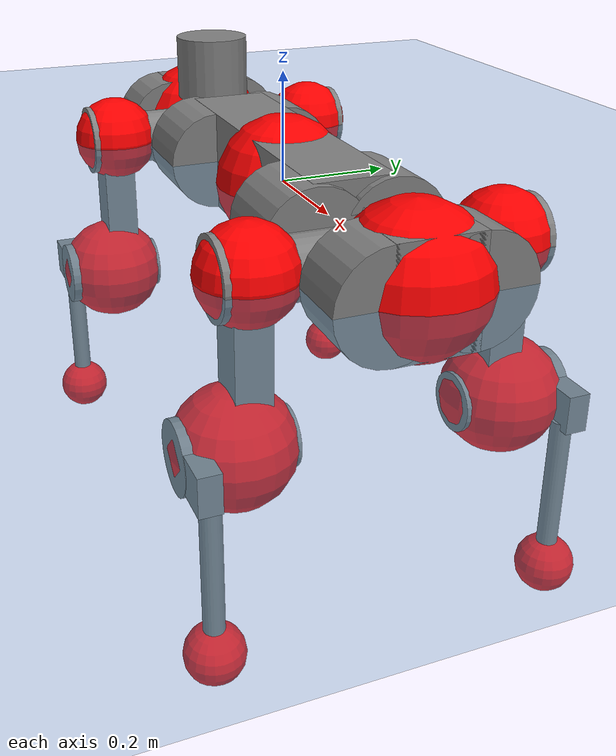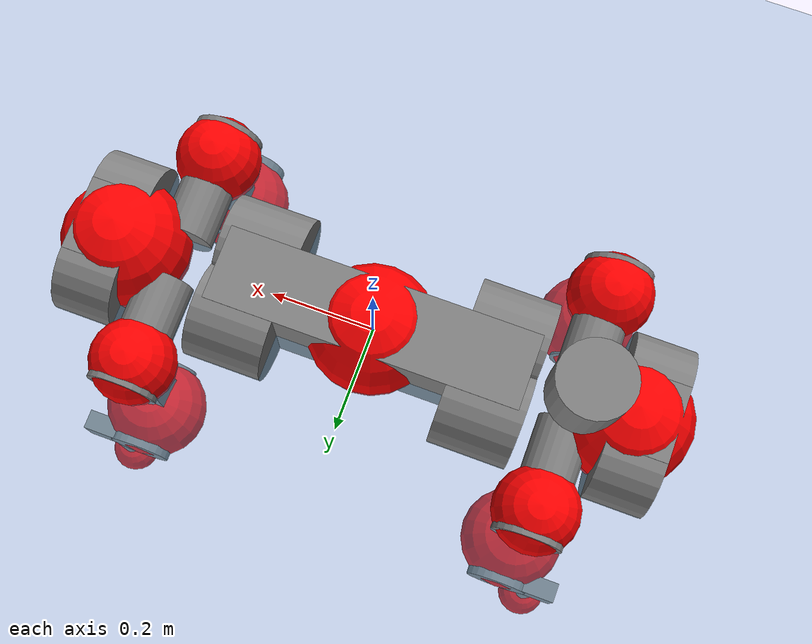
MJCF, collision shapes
<mujoco model="anymal_c">
  <compiler angle="radian" assetdir="assets" balanceinertia="true" inertiafromgeom="false"/>

  <option timestep="0.005" density="1.2" viscosity="2e-05"/>

  <size nkey="1"/>

  <visual>
    <quality shadowsize="8192"/>
    <map shadowclip="0.5"/>
  </visual>

  <default>
    <default class="/">
      <material specular="0" shininess="0.25"/>
      <geom contype="0" conaffinity="0" group="1" solref="-1000 -80"/>
      <site size="0.01 0.005 0.005" group="5"/>
      <general forcelimited="true" forcerange="-80 80" biastype="affine" gainprm="80" biasprm="0 -80 -2"/>
      <default class="anymal_c">
        <joint armature="0.01" damping="0.01" frictionloss="0.1"/>
        <default class="visual">
          <geom type="mesh" group="2"/>
          <default class="visual_zflip"/>
        </default>
        <default class="collision">
          <geom type="cylinder" group="3"/>
          <default class="foot">
            <geom size="0.03 0 0" type="sphere" condim="6" priority="1" friction="0.8 0.02 0.01" solimp="0.015 1 0.03"/>
          </default>
        </default>
      </default>
      <default class="reward_collision_sphere">
        <geom group="5" rgba="1 0 0 1"/>
      </default>
    </default>
  </default>

  <asset>
    <texture type="skybox" colorspace="auto" name="//unnamed_texture_0" builtin="gradient" rgb1="0.95 0.95 0.95" rgb2="0.95 0.95 0.95" width="100" height="600"/>
    <texture type="2d" colorspace="auto" name="texplane" builtin="checker" rgb1="0.345 0.575 0.748" rgb2="0.345 0.575 0.748" markrgb="1 1 1" width="512" height="512"/>
    <texture type="2d" colorspace="linear" name="base" file="base.png"/>
    <texture type="2d" colorspace="linear" name="top_shell" file="top_shell.png"/>
    <texture type="2d" colorspace="linear" name="bottom_shell" file="bottom_shell.png"/>
    <texture type="2d" colorspace="linear" name="remote" file="remote.png"/>
    <texture type="2d" colorspace="linear" name="hatch" file="hatch.png"/>
    <texture type="2d" colorspace="linear" name="handle" file="handle.png"/>
    <texture type="2d" colorspace="linear" name="face" file="face.png"/>
    <texture type="2d" colorspace="linear" name="battery" file="battery.png"/>
    <texture type="2d" colorspace="linear" name="lidar_cage" file="lidar_cage.png"/>
    <texture type="2d" colorspace="linear" name="depth_camera" file="depth_camera.png"/>
    <texture type="2d" colorspace="linear" name="wide_angle_camera" file="wide_angle_camera.png"/>
    <texture type="2d" colorspace="linear" name="lidar" file="lidar.png"/>
    <texture type="2d" colorspace="linear" name="drive" file="drive.png"/>
    <texture type="2d" colorspace="linear" name="hip_l" file="hip_l.png"/>
    <texture type="2d" colorspace="linear" name="shank_l" file="shank_l.png"/>
    <texture type="2d" colorspace="linear" name="foot" file="foot.png"/>
    <texture type="2d" colorspace="linear" name="thigh" file="thigh.png"/>
    <texture type="2d" colorspace="linear" name="shank_r" file="shank_r.png"/>
    <texture type="2d" colorspace="linear" name="hip_r" file="hip_r.png"/>
    <material name="MatPlane" class="/" texture="texplane" texuniform="true" texrepeat="2 2" specular="0.9" shininess="0.5"/>
    <material name="black_plastic" class="/" rgba="0.007 0.007 0.007 1"/>
    <material name="green" class="/" rgba="0.052 0.178 0.033 1"/>
    <material name="red" class="/" rgba="0.178 0.006 0.005 1"/>
    <material name="yellow" class="/" rgba="0.178 0.119 0.006 1"/>
    <material name="lwl" class="/" rgba="0.8 0.8 0.8 1"/>
    <material name="base" class="/" texture="base"/>
    <material name="top_shell" class="/" texture="top_shell"/>
    <material name="bottom_shell" class="/" texture="bottom_shell"/>
    <material name="hip_l" class="/" texture="hip_l"/>
    <material name="thigh" class="/" texture="thigh"/>
    <material name="shank_l" class="/" texture="shank_l"/>
    <material name="foot" class="/" texture="foot"/>
    <material name="hip_r" class="/" texture="hip_r"/>
    <material name="shank" class="/" texture="shank_r"/>
    <material name="hatch" class="/" texture="hatch"/>
    <material name="remote" class="/" texture="remote"/>
    <material name="handle" class="/" texture="handle"/>
    <material name="face" class="/" texture="face"/>
    <material name="depth_camera" class="/" texture="depth_camera"/>
    <material name="wide_angle_camera" class="/" texture="wide_angle_camera"/>
    <material name="battery" class="/" texture="battery"/>
    <material name="lidar_cage" class="/" texture="lidar_cage"/>
    <material name="lidar" class="/" texture="lidar"/>
    <material name="drive" class="/" texture="drive"/>
    <mesh name="base_0" class="/" file="base_0.obj"/>
    <mesh name="base_1" class="/" file="base_1.obj"/>
    <mesh name="base_2" class="/" file="base_2.obj"/>
    <mesh name="base_3" class="/" file="base_3.obj"/>
    <mesh name="base_4" class="/" file="base_4.obj"/>
    <mesh name="base_5" class="/" file="base_5.obj"/>
    <mesh name="top_shell" class="/" file="top_shell.obj"/>
    <mesh name="bottom_shell" class="/" file="bottom_shell.obj"/>
    <mesh name="remote" class="/" file="remote.obj"/>
    <mesh name="handle" class="/" file="handle.obj"/>
    <mesh name="face" class="/" file="face.obj"/>
    <mesh name="wide_angle_camera" class="/" file="wide_angle_camera.obj"/>
    <mesh name="depth_camera" class="/" file="depth_camera.obj"/>
    <mesh name="battery" class="/" file="battery.obj"/>
    <mesh name="lidar_cage" class="/" file="lidar_cage.obj"/>
    <mesh name="lidar" class="/" file="lidar.obj"/>
    <mesh name="drive" class="/" file="drive.obj"/>
    <mesh name="hip_l" class="/" file="hip_l.obj"/>
    <mesh name="thigh" class="/" file="thigh.obj"/>
    <mesh name="shank_l" class="/" file="shank_l.obj"/>
    <mesh name="foot" class="/" file="foot.obj"/>
    <mesh name="hip_r" class="/" file="hip_r.obj"/>
    <mesh name="hatch" class="/" file="hatch.obj"/>
    <mesh name="shank_r" class="/" file="shank_r.obj"/>
  </asset>

  <worldbody>
    <geom name="floor" class="/" size="100 100 0.125" type="plane" group="0" material="MatPlane"/>
    <light name="toplight_shadow" class="/" pos="0 0 5" dir="0.0990148 0.0990148 -0.990148" type="directional" ambient="0.04 0.04 0.04" diffuse="0.55 0.55 0.55" specular="0.12 0.12 0.12"/>
    <light name="toplight_fill" class="/" pos="0 0 5" dir="0.0990148 0.0990148 -0.990148" type="directional" castshadow="false" ambient="0.04 0.04 0.04" diffuse="0.3 0.3 0.3" specular="0.08 0.08 0.08"/>
    <body name="trunk" childclass="anymal_c" pos="0.00106516 9.21889e-05 -0.000761665" quat="1 1.31136e-05 2.632e-06 -6.38532e-05">
      <inertial pos="-5.53666e-06 -0.00254031 0.0488307" quat="0.496311 0.499899 0.503342 0.500423" mass="21.7895" diaginertia="1.0279 0.600724 0.219169"/>
      <joint name="//unnamed_joint_0" type="free" armature="0" damping="0" frictionloss="0"/>
      <geom name="//unnamed_geom_1" class="visual" material="green" mesh="base_0"/>
      <geom name="//unnamed_geom_2" class="visual" material="yellow" mesh="base_1"/>
      <geom name="//unnamed_geom_3" class="visual" material="red" mesh="base_2"/>
      <geom name="//unnamed_geom_4" class="visual" material="black_plastic" mesh="base_3"/>
      <geom name="//unnamed_geom_5" class="visual" material="lwl" mesh="base_4"/>
      <geom name="//unnamed_geom_6" class="visual" material="base" mesh="base_5"/>
      <geom name="trunk_1" class="collision" size="0.299114 0.0721999 0.0928284" type="box"/>
      <geom name="trunk_2" class="collision" size="0.0928284 0.0747784" pos="0.239005 0.0694567 0" quat="0.707107 0 0.707107 0"/>
      <geom name="trunk_3" class="collision" size="0.0928284 0.0747784" pos="-0.239005 0.0694567 0" quat="0.707107 0 0.707107 0"/>
      <geom name="trunk_4" class="collision" size="0.0928284 0.0747784" pos="0.239005 -0.0694567 0" quat="0.707107 0 0.707107 0"/>
      <geom name="trunk_5" class="collision" size="0.0928284 0.0747784" pos="-0.239005 -0.0694567 0" quat="0.707107 0 0.707107 0"/>
      <geom name="//unnamed_geom_12" class="visual" material="top_shell" mesh="top_shell"/>
      <geom name="//unnamed_geom_13" class="visual" material="bottom_shell" mesh="bottom_shell"/>
      <geom name="//unnamed_geom_14" class="visual" material="remote" mesh="remote"/>
      <geom name="//unnamed_geom_15" class="visual" material="handle" mesh="handle"/>
      <geom name="//unnamed_geom_16" class="visual" pos="0.455482 0 0" quat="1 0 0 0" material="face" mesh="face"/>
      <geom name="trunk_6" class="collision" size="0.0567285 0.0721999 0.0928284" pos="0.51592 0 0" type="box"/>
      <geom name="//unnamed_geom_18" class="collision" size="0.0928284 0.0567285" pos="0.51592 0.0694567 0" quat="0.707107 0 0.707107 0"/>
      <geom name="//unnamed_geom_19" class="collision" size="0.0928284 0.0567285" pos="0.51592 -0.0694567 0" quat="0.707107 0 0.707107 0"/>
      <geom name="//unnamed_geom_20" class="visual" pos="0.50729 0 -0.0285653" quat="0.965926 0 0.258819 0" material="depth_camera" mesh="depth_camera"/>
      <geom name="//unnamed_geom_21" class="visual" pos="0.563721 0 0.0150175" material="wide_angle_camera" mesh="wide_angle_camera"/>
      <geom name="//unnamed_geom_22" class="visual_zflip" pos="-0.455482 0 0" quat="0 0 0 1" material="face" mesh="face"/>
      <geom name="trunk_7" class="collision" size="0.0567285 0.0721999 0.0928284" pos="-0.51592 0 0" quat="0 0 0 1" type="box"/>
      <geom name="//unnamed_geom_24" class="collision" size="0.0928284 0.0567285" pos="-0.51592 -0.0694567 0" quat="0 -0.707107 0 0.707107"/>
      <geom name="//unnamed_geom_25" class="collision" size="0.0928284 0.0567285" pos="-0.51592 0.0694567 0" quat="0 -0.707107 0 0.707107"/>
      <geom name="//unnamed_geom_26" class="visual" pos="-0.50729 0 -0.0285653" quat="0 -0.258819 0 0.965926" material="depth_camera" mesh="depth_camera"/>
      <geom name="//unnamed_geom_27" class="visual_zflip" pos="-0.563721 0 0.0150175" quat="0 0 0 1" material="wide_angle_camera" mesh="wide_angle_camera"/>
      <geom name="//unnamed_geom_28" class="visual" material="battery" mesh="battery"/>
      <geom name="//unnamed_geom_29" class="visual" pos="0 0.0744633 0.0298694" quat="0.683013 -0.183013 0.183013 0.683013" material="depth_camera" mesh="depth_camera"/>
      <geom name="//unnamed_geom_30" class="visual" pos="0 -0.0744633 0.0298694" quat="0.683013 0.183013 0.183013 -0.683013" material="depth_camera" mesh="depth_camera"/>
      <geom name="//unnamed_geom_31" class="visual" pos="-0.399989 0 0.073733" quat="1 0 0 0" material="lidar_cage" mesh="lidar_cage"/>
      <geom name="trunk_8" class="collision" size="0.0721999 0.0618856" pos="-0.399989 0 0.133923"/>
      <geom name="//unnamed_geom_33" class="visual" pos="-0.399989 -4.18936e-05 0.142651" quat="0.707107 0 0 -0.707107" material="lidar" mesh="lidar"/>
      <geom name="//unnamed_geom_34" class="visual" pos="0.329552 0.103197 -1.88589e-10" quat="0.258819 0.965926 0 0" material="drive" mesh="drive"/>
      <geom name="//unnamed_geom_35" class="visual" pos="0.329552 -0.103197 1.88589e-10" quat="0.258819 -0.965926 0 0" material="drive" mesh="drive"/>
      <geom name="//unnamed_geom_36" class="visual" pos="-0.329552 0.103197 1.88589e-10" quat="0 0 0.965926 -0.258819" material="drive" mesh="drive"/>
      <geom name="//unnamed_geom_37" class="visual" pos="-0.329552 -0.103197 -1.88589e-10" quat="0 0 -0.965926 -0.258819" material="drive" mesh="drive"/>
      <geom name="//unnamed_geom_38" class="visual" pos="0.127469 0 0.0732315" quat="1 0 0 0" material="hatch" mesh="hatch"/>
      <geom name="//unnamed_geom_39" class="reward_collision_sphere" size="0.123771"/>
      <geom name="//unnamed_geom_40" class="reward_collision_sphere" size="0.123771" pos="0.494492 0 0"/>
      <geom name="//unnamed_geom_41" class="reward_collision_sphere" size="0.123771" pos="-0.494492 0 0"/>
      <site name="imu" pos="0.286563 0.00860816 0.0332916" size="0.0103143"/>
      <camera name="track" pos="0 -1.98448 0" quat="0.707107 0.707107 0 0" mode="trackcom"/>
      <camera name="ego_camera" pos="0.494492 0 -0.0401268" quat="-0.5 -0.5 0.5 0.5"/>
      <body name="LF_HIP" pos="0.328159 0.101624 -0.000721548" quat="0.25861 0.965982 6.61862e-05 -5.641e-06">
        <inertial pos="0.0624729 -0.0167204 -0.00847146" quat="-0.128157 0.709404 -0.135271 0.679723" mass="2.9633" diaginertia="0.00906827 0.00444952 0.00324242"/>
        <joint name="LF_HAA" pos="0 0 0" axis="0.999991 -0.0041939 0.000635015" range="-0.716411 0.482215" armature="0.0106064" damping="0.014924" frictionloss="0.0959298"/>
        <geom name="//unnamed_geom_42" class="visual" pos="0 -1.10938e-05 1.82215e-06" quat="0.258819 -0.965926 0 0" material="hip_l" mesh="hip_l"/>
        <geom name="//unnamed_geom_43" class="visual" pos="0.0658224 -0.0783578 -0.0453207" quat="0.183013 -0.683013 0.683013 0.183013" material="drive" mesh="drive"/>
        <geom name="//unnamed_geom_44" class="collision" size="0.0515713 0.0721999" pos="0.0658224 -0.011867 -0.00692689" quat="-0.353553 -0.612372 0.612372 -0.353553"/>
        <body name="LF_THIGH" pos="0.0656188 -0.069654 -0.0416384" quat="0.182064 -0.683474 0.682637 0.183638">
          <inertial pos="0.0346109 -2.45659e-05 -0.245866" quat="0.993382 -0.0099698 -0.0727328 0.0883365" mass="3.29034" diaginertia="0.0482317 0.0276984 0.00418558"/>
          <joint name="LF_HFE" pos="0 0 0" axis="0.999996 0.00138477 0.00263813" stiffness="0.00233532" range="-3.0955 3.16419" armature="0.0108946" damping="0.0183793" frictionloss="0.0995692"/>
          <geom name="//unnamed_geom_45" class="visual" pos="0.00212159 3.34313e-06 0" quat="0.707107 0 0 -0.707107" material="thigh" mesh="thigh"/>
          <geom name="//unnamed_geom_46" class="collision" size="0.0670427 0.0412571" pos="0.0439549 0 0" quat="0.5 0.5 -0.5 -0.5"/>
          <geom name="//unnamed_geom_47" class="collision" size="0.0386785 0.0309428 0.145755" pos="0.0329662 0 -0.141762" quat="0.707107 0 0 -0.707107" type="box"/>
          <geom name="//unnamed_geom_48" class="visual" pos="0.110217 0 -0.285904" quat="1 0 0 0" material="drive" mesh="drive"/>
          <geom name="//unnamed_geom_49" class="collision" size="0.0515713 0.0721999" pos="0.0332958 0 -0.285904" quat="0.707107 0 0.707107 0"/>
          <geom name="//unnamed_geom_50" class="reward_collision_sphere" size="0.0825141" pos="0.0274718 0 0"/>
          <body name="LF_SHANK" pos="0.110292 0.00222749 -0.286426" quat="1 -0.000130729 -0.000441761 7.71097e-05">
            <inertial pos="0.00634112 -0.0617885 -0.0810045" quat="0.992912 -0.116111 -0.000595672 -0.0253749" mass="0.649194" diaginertia="0.0159721 0.00898684 0.00113419"/>
            <joint name="LF_KFE" pos="0 0 0" axis="0.999998 0.000790621 0.00200541" range="-3.11496 3.13479" armature="0.00991799" damping="0.0106726" frictionloss="0.102832"/>
            <geom name="//unnamed_geom_51" class="visual" pos="0.000691805 0.00368874 0" quat="0.707107 0 0 -0.707107" material="shank_l" mesh="shank_l"/>
            <geom name="LF_kfe_act" class="collision" size="0.0618856 0.0206285" pos="0.0219774 0 0" quat="0.5 0.5 -0.5 -0.5"/>
            <geom name="//unnamed_geom_53" class="collision" size="0.059306 0.0348107 0.0195971" pos="0.0219774 -0.0570527 0" quat="0.5 0.5 -0.5 -0.5" type="box"/>
            <geom name="//unnamed_geom_54" class="visual" pos="0.0143401 -0.0860786 -0.339042" quat="0.382683 0 0 -0.92388" material="foot" mesh="foot"/>
            <geom name="LF_calf" class="collision" size="0.01805 0.145691" pos="0.0143403 -0.0872673 -0.169521" quat="0.707107 0 0 -0.707107"/>
            <geom name="LF_foot" class="foot" size="0.0303917" pos="0.0143403 -0.0872673 -0.31647" quat="0.707107 0 0 -0.707107"/>
            <geom name="//unnamed_geom_57" class="reward_collision_sphere" size="0.103143" pos="-0.0549436 0 0"/>
            <geom name="//unnamed_geom_58" class="reward_collision_sphere" size="0.0515713" pos="0.0143403 -0.0872673 -0.31647"/>
            <site name="LF_foot" class="foot" pos="0.0143403 -0.0872673 -0.31647" quat="0.707107 0 0 -0.707107" size="0.0103143"/>
          </body>
        </body>
      </body>
      <body name="RF_HIP" pos="0.327415 -0.103267 0.00151371" quat="0.258886 -0.965908 -0.000138615 3.60389e-05">
        <inertial pos="0.0613015 0.0129085 -0.00976963" quat="0.124633 0.676847 0.12203 0.71516" mass="3.01033" diaginertia="0.00905963 0.00484466 0.00323535"/>
        <joint name="RF_HAA" pos="0 0 0" axis="0.999964 0.00818189 0.0024238" range="-0.503991 0.719544" armature="0.0102833" damping="0.00107347" frictionloss="0.0998274"/>
        <geom name="//unnamed_geom_59" class="visual" pos="0 1.10937e-05 1.82215e-06" quat="0.258819 0.965926 0 0" material="hip_r" mesh="hip_r"/>
        <geom name="//unnamed_geom_60" class="visual" pos="0.0658224 0.0783578 -0.0453207" quat="0.183013 0.683013 0.683013 -0.183013" material="drive" mesh="drive"/>
        <geom name="//unnamed_geom_61" class="collision" size="0.0515713 0.0721999" pos="0.0658224 0.011867 -0.00692689" quat="-0.353553 0.612372 0.612372 0.353553"/>
        <body name="RF_THIGH" pos="0.0666585 0.0720157 -0.0444477" quat="0.183462 0.683544 0.682476 -0.18258">
          <inertial pos="0.036585 0.000909541 -0.246755" quat="0.992729 -0.00939587 -0.0801427 0.0893235" mass="3.49431" diaginertia="0.0482941 0.028231 0.00443933"/>
          <joint name="RF_HFE" pos="0 0 0" axis="0.999998 -0.00183724 0.000412039" range="-3.15794 3.15481" armature="0.00971558" damping="0.0120113" frictionloss="0.101479"/>
          <geom name="//unnamed_geom_62" class="visual" pos="0.00212159 3.34313e-06 0" quat="0.707107 0 0 -0.707107" material="thigh" mesh="thigh"/>
          <geom name="//unnamed_geom_63" class="collision" size="0.0670427 0.0412571" pos="0.0439549 0 0" quat="0.5 0.5 0.5 0.5"/>
          <geom name="//unnamed_geom_64" class="collision" size="0.0386785 0.0309428 0.145755" pos="0.0329662 0 -0.141762" quat="0.707107 0 0 0.707107" type="box"/>
          <geom name="//unnamed_geom_65" class="visual" pos="0.110217 0 -0.285904" quat="1 0 0 0" material="drive" mesh="drive"/>
          <geom name="//unnamed_geom_66" class="collision" size="0.0515713 0.0721999" pos="0.0332958 0 -0.285904" quat="0.707107 0 0.707107 0"/>
          <geom name="//unnamed_geom_67" class="reward_collision_sphere" size="0.0825141" pos="0.0274718 0 0"/>
          <body name="RF_SHANK" pos="0.109049 -0.000644426 -0.284805" quat="1 -0.000244066 -0.000189464 0.000176626">
            <inertial pos="0.00431261 0.0608458 -0.0806737" quat="0.992973 0.114267 -0.0142091 0.027308" mass="0.6692" diaginertia="0.0166268 0.00912165 0.00116217"/>
            <joint name="RF_KFE" pos="0 0 0" axis="1 -0.000952309 -0.000122423" range="-3.18836 3.11709" armature="0.0115309" damping="0.0222989" frictionloss="0.102616"/>
            <geom name="//unnamed_geom_68" class="visual" pos="0.000691801 -0.00368873 0" quat="0.707107 0 0 0.707107" material="shank" mesh="shank_r"/>
            <geom name="RF_kfe_act" class="collision" size="0.0618856 0.0206285" pos="0.0219774 0 0" quat="0.5 0.5 0.5 0.5"/>
            <geom name="//unnamed_geom_70" class="collision" size="0.059306 0.0348107 0.0195971" pos="0.0219774 0.0570527 0" quat="0.5 0.5 0.5 0.5" type="box"/>
            <geom name="//unnamed_geom_71" class="visual" pos="0.0143404 0.0860786 -0.339042" quat="0.382683 0 0 0.92388" material="foot" mesh="foot"/>
            <geom name="RF_calf" class="collision" size="0.01805 0.145691" pos="0.0143403 0.0872673 -0.169521" quat="0.707107 0 0 0.707107"/>
            <geom name="RF_foot" class="foot" size="0.0279302" pos="0.0143403 0.0872673 -0.31647" quat="0.707107 0 0 0.707107"/>
            <geom name="//unnamed_geom_74" class="reward_collision_sphere" size="0.103143" pos="-0.0549436 0 0"/>
            <geom name="//unnamed_geom_75" class="reward_collision_sphere" size="0.0515713" pos="0.0143403 0.0872673 -0.31647"/>
            <site name="RF_foot" class="foot" pos="0.0143403 0.0872673 -0.31647" quat="0.707107 0 0 0.707107" size="0.0103143"/>
          </body>
        </body>
      </body>
      <body name="LH_HIP" pos="-0.326382 0.101957 -0.00108739" quat="-0.000247506 -0.000157983 0.965939 -0.258769">
        <inertial pos="0.0625719 0.0163881 -0.0110578" quat="0.127847 0.684703 0.12399 0.706727" mass="3.15203" diaginertia="0.0100136 0.00495171 0.00343187"/>
        <joint name="LH_HAA" pos="0 0 0" axis="0.999922 0.00899737 -0.00866266" range="-0.494935 0.709653" armature="0.0104024" damping="0" frictionloss="0.103139"/>
        <geom name="//unnamed_geom_76" class="visual" pos="0 1.10937e-05 1.82215e-06" quat="-0.258819 -0.965926 0 0" material="hip_r" mesh="hip_r"/>
        <geom name="//unnamed_geom_77" class="visual" pos="0.0658224 0.0783578 -0.0453207" quat="0.183013 0.683013 0.683013 -0.183013" material="drive" mesh="drive"/>
        <geom name="//unnamed_geom_78" class="collision" size="0.0515713 0.0721999" pos="0.0658224 0.011867 -0.00692689" quat="-0.353553 0.612372 0.612372 0.353553"/>
        <body name="LH_THIGH" pos="0.0654602 0.0716831 -0.0433062" quat="0.183057 0.682925 0.683223 -0.182513">
          <inertial pos="0.031297 -0.000948296 -0.248966" quat="0.992717 -0.00551687 -0.0816961 0.088359" mass="3.31692" diaginertia="0.0458988 0.0287252 0.00413165"/>
          <joint name="LH_HFE" pos="0 0 0" axis="1 -0.000269903 -0.000525375" stiffness="0.00870659" range="-3.14966 3.11266" armature="0.00983205" damping="0" frictionloss="0.102024"/>
          <geom name="//unnamed_geom_79" class="visual" pos="0.00212159 3.34313e-06 0" quat="0.707107 0 0 -0.707107" material="thigh" mesh="thigh"/>
          <geom name="//unnamed_geom_80" class="collision" size="0.0670427 0.0412571" pos="0.0439549 0 0" quat="0.5 0.5 -0.5 -0.5"/>
          <geom name="//unnamed_geom_81" class="collision" size="0.0386785 0.0309428 0.145755" pos="0.0329662 0 -0.141762" quat="0.707107 0 0 -0.707107" type="box"/>
          <geom name="//unnamed_geom_82" class="visual" pos="0.110217 0 -0.285904" quat="1 0 0 0" material="drive" mesh="drive"/>
          <geom name="//unnamed_geom_83" class="collision" size="0.0515713 0.0721999" pos="0.0332958 0 -0.285904" quat="0.707107 0 0.707107 0"/>
          <geom name="//unnamed_geom_84" class="reward_collision_sphere" size="0.0825141" pos="0.0274718 0 0"/>
          <body name="LH_SHANK" pos="0.110483 -0.00174447 -0.284721" quat="1 -1.69427e-05 -4.64139e-06 -0.000202727">
            <inertial pos="0.00633119 0.0631704 -0.0800264" quat="0.992506 0.118763 -0.00490786 0.0283243" mass="0.665484" diaginertia="0.016513 0.00945376 0.00116013"/>
            <joint name="LH_KFE" pos="0 0 0" axis="0.999993 -0.00224279 -0.00283112" range="-3.09738 3.10942" armature="0.0116772" damping="0.0224399" frictionloss="0.091448"/>
            <geom name="//unnamed_geom_85" class="visual" pos="0.000691801 -0.00368873 0" quat="-0.707107 0 0 -0.707107" material="shank" mesh="shank_r"/>
            <geom name="LH_kfe_act" class="collision" size="0.0618856 0.0206285" pos="0.0219774 0 0" quat="0.5 0.5 -0.5 -0.5"/>
            <geom name="//unnamed_geom_87" class="collision" size="0.059306 0.0348107 0.0195971" pos="0.0219774 0.0570527 0" quat="0.5 0.5 -0.5 -0.5" type="box"/>
            <geom name="//unnamed_geom_88" class="visual" pos="0.0143404 0.0860786 -0.339042" quat="-0.382683 0 0 -0.92388" material="foot" mesh="foot"/>
            <geom name="LH_calf" class="collision" size="0.01805 0.145691" pos="0.0143403 0.0872673 -0.169521" quat="0.707107 0 0 -0.707107"/>
            <geom name="LH_foot" class="foot" size="0.0320647" pos="0.0143403 0.0872673 -0.31647" quat="0.707107 0 0 -0.707107"/>
            <geom name="//unnamed_geom_91" class="reward_collision_sphere" size="0.103143" pos="-0.0549436 0 0"/>
            <geom name="//unnamed_geom_92" class="reward_collision_sphere" size="0.0515713" pos="0.0143403 0.0872673 -0.31647"/>
            <site name="LH_foot" class="foot" pos="0.0143403 0.0872673 -0.31647" quat="0.707107 0 0 -0.707107" size="0.0103143"/>
          </body>
        </body>
      </body>
      <body name="RH_HIP" pos="-0.326842 -0.103967 0.000392459" quat="-3.875e-05 0.000171376 -0.965949 -0.258731">
        <inertial pos="0.0613584 -0.0148199 -0.0111815" quat="-0.12191 0.702332 -0.136864 0.687849" mass="3.03365" diaginertia="0.00909402 0.0045688 0.00322361"/>
        <joint name="RH_HAA" pos="0 0 0" axis="0.9999 -0.0127608 0.00607625" range="-0.774453 0.503317" armature="0.0104785" damping="0.00739518" frictionloss="0.103336"/>
        <geom name="//unnamed_geom_93" class="visual" pos="0 -1.10938e-05 1.82215e-06" quat="-0.258819 0.965926 0 0" material="hip_l" mesh="hip_l"/>
        <geom name="//unnamed_geom_94" class="visual" pos="0.0658224 -0.0783578 -0.0453207" quat="-0.183013 0.683013 -0.683013 -0.183013" material="drive" mesh="drive"/>
        <geom name="//unnamed_geom_95" class="collision" size="0.0515713 0.0721999" pos="0.0658224 -0.011867 -0.00692689" quat="0.353553 0.612372 -0.612372 0.353553"/>
        <body name="RH_THIGH" pos="0.0683548 -0.0721794 -0.0441764" quat="-0.183878 0.683342 -0.68248 -0.182903">
          <inertial pos="0.0346031 0.000716767 -0.247344" quat="0.993166 -0.00521979 -0.0811789 0.0836898" mass="3.24238" diaginertia="0.0466222 0.0282331 0.00420648"/>
          <joint name="RH_HFE" pos="0 0 0" axis="0.999986 0.00142927 -0.00510663" stiffness="0.00327195" range="-3.12234 3.16294" armature="0.0107106" damping="0.0102731" frictionloss="0.104646"/>
          <geom name="//unnamed_geom_96" class="visual" pos="0.00212159 3.34313e-06 0" quat="0.707107 0 0 -0.707107" material="thigh" mesh="thigh"/>
          <geom name="//unnamed_geom_97" class="collision" size="0.0670427 0.0412571" pos="0.0439549 0 0" quat="0.5 0.5 0.5 0.5"/>
          <geom name="//unnamed_geom_98" class="collision" size="0.0386785 0.0309428 0.145755" pos="0.0329662 0 -0.141762" quat="0.707107 0 0 0.707107" type="box"/>
          <geom name="//unnamed_geom_99" class="visual" pos="0.110217 0 -0.285904" quat="1 0 0 0" material="drive" mesh="drive"/>
          <geom name="//unnamed_geom_100" class="collision" size="0.0515713 0.0721999" pos="0.0332958 0 -0.285904" quat="0.707107 0 0.707107 0"/>
          <geom name="//unnamed_geom_101" class="reward_collision_sphere" size="0.0825141" pos="0.0274718 0 0"/>
          <body name="RH_SHANK" pos="0.109605 0.00235052 -0.285753" quat="0.999999 0.000645535 0.000842644 0.000721637">
            <inertial pos="0.00833372 -0.0604392 -0.0819843" quat="0.99213 -0.122123 0.00647786 -0.0268646" mass="0.658697" diaginertia="0.0161986 0.00889536 0.00113652"/>
            <joint name="RH_KFE" pos="0 0 0" axis="0.999996 -0.00176688 0.0021928" range="-3.13462 3.18612" armature="0.0103453" damping="0.0224579" frictionloss="0.102361"/>
            <geom name="//unnamed_geom_102" class="visual" pos="0.000691805 0.00368874 0" quat="0.707107 0 0 -0.707107" material="shank_l" mesh="shank_l"/>
            <geom name="RH_kfe_act" class="collision" size="0.0618856 0.0206285" pos="0.0219774 0 0" quat="0.5 0.5 0.5 0.5"/>
            <geom name="//unnamed_geom_104" class="collision" size="0.059306 0.0348107 0.0195971" pos="0.0219774 -0.0570527 0" quat="0.5 0.5 0.5 0.5" type="box"/>
            <geom name="//unnamed_geom_105" class="visual" pos="0.0143401 -0.0860786 -0.339042" quat="0.382683 0 0 -0.92388" material="foot" mesh="foot"/>
            <geom name="RH_calf" class="collision" size="0.01805 0.145691" pos="0.0143403 -0.0872673 -0.169521" quat="0.707107 0 0 0.707107"/>
            <geom name="RH_foot" class="foot" size="0.0279635" pos="0.0143403 -0.0872673 -0.31647" quat="0.707107 0 0 0.707107"/>
            <geom name="//unnamed_geom_108" class="reward_collision_sphere" size="0.103143" pos="-0.0549436 0 0"/>
            <geom name="//unnamed_geom_109" class="reward_collision_sphere" size="0.0515713" pos="0.0143403 -0.0872673 -0.31647"/>
            <site name="RH_foot" class="foot" pos="0.0143403 -0.0872673 -0.31647" quat="0.707107 0 0 0.707107" size="0.0103143"/>
          </body>
        </body>
      </body>
    </body>
  </worldbody>

  <contact>
    <pair class="/" geom1="floor" geom2="LF_foot" name="//unnamed_contact_0"/>
    <pair class="/" geom1="floor" geom2="RF_foot" name="//unnamed_contact_1"/>
    <pair class="/" geom1="floor" geom2="LH_foot" name="//unnamed_contact_2"/>
    <pair class="/" geom1="floor" geom2="RH_foot" name="//unnamed_contact_3"/>
  </contact>

  <actuator>
    <general name="LF_HAA" class="/" joint="LF_HAA" forcerange="-77.4344 77.4344" gainprm="81.6121" biasprm="0 -81.6121 -2.03947"/>
    <general name="LF_HFE" class="/" joint="LF_HFE" forcerange="-74.2678 74.2678" gainprm="81.6121" biasprm="0 -81.6121 -2.03947"/>
    <general name="LF_KFE" class="/" joint="LF_KFE" forcerange="-85.6469 85.6469" gainprm="81.6121" biasprm="0 -81.6121 -2.03947"/>
    <general name="RF_HAA" class="/" joint="RF_HAA" forcerange="-85.1072 85.1072" gainprm="81.6121" biasprm="0 -81.6121 -2.03947"/>
    <general name="RF_HFE" class="/" joint="RF_HFE" forcerange="-89.8744 89.8744" gainprm="81.6121" biasprm="0 -81.6121 -2.03947"/>
    <general name="RF_KFE" class="/" joint="RF_KFE" forcerange="-85.4044 85.4044" gainprm="81.6121" biasprm="0 -81.6121 -2.03947"/>
    <general name="LH_HAA" class="/" joint="LH_HAA" forcerange="-82.7169 82.7169" gainprm="81.6121" biasprm="0 -81.6121 -2.03947"/>
    <general name="LH_HFE" class="/" joint="LH_HFE" forcerange="-77.8487 77.8487" gainprm="81.6121" biasprm="0 -81.6121 -2.03947"/>
    <general name="LH_KFE" class="/" joint="LH_KFE" forcerange="-82.1764 82.1764" gainprm="81.6121" biasprm="0 -81.6121 -2.03947"/>
    <general name="RH_HAA" class="/" joint="RH_HAA" forcerange="-82.4759 82.4759" gainprm="81.6121" biasprm="0 -81.6121 -2.03947"/>
    <general name="RH_HFE" class="/" joint="RH_HFE" forcerange="-90.6172 90.6172" gainprm="81.6121" biasprm="0 -81.6121 -2.03947"/>
    <general name="RH_KFE" class="/" joint="RH_KFE" forcerange="-79.4012 79.4012" gainprm="81.6121" biasprm="0 -81.6121 -2.03947"/>
  </actuator>

  <sensor>
    <gyro site="imu" name="imu_angular_velocity"/>
    <velocimeter site="imu" name="imu_linear_velocity"/>
    <framelinvel objtype="site" objname="LF_foot" name="LF_foot_global_linear_velocity"/>
    <framelinvel objtype="site" objname="RF_foot" name="RF_foot_global_linear_velocity"/>
    <framelinvel objtype="site" objname="LH_foot" name="LH_foot_global_linear_velocity"/>
    <framelinvel objtype="site" objname="RH_foot" name="RH_foot_global_linear_velocity"/>
  </sensor>

  <keyframe>
    <key name="home" qpos="0 0 0.55 1 0 0 0 0 0.4 -0.8 0 -0.4 0.8 0 -0.4 0.8 0 0.4 -0.8"/>
  </keyframe>
</mujoco>
